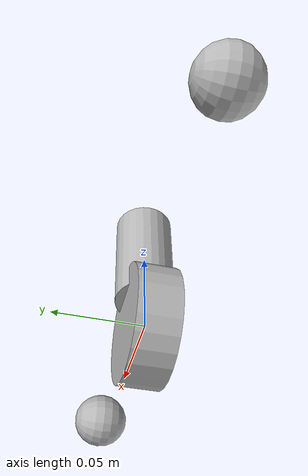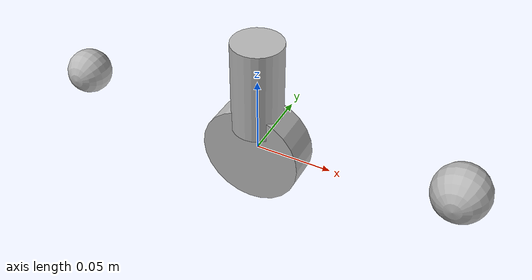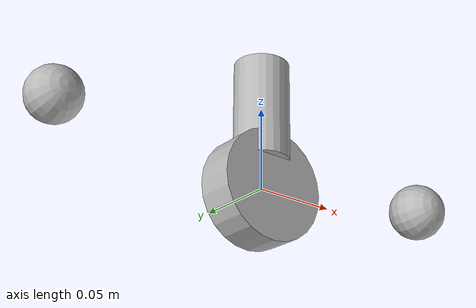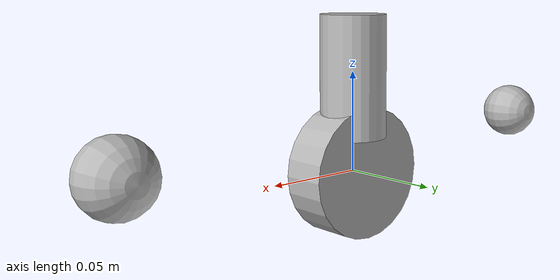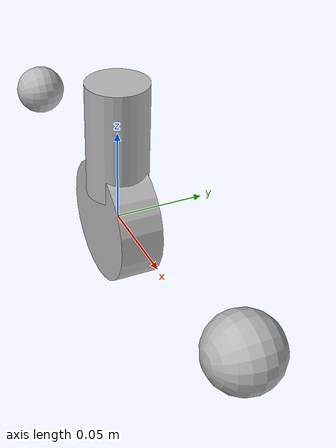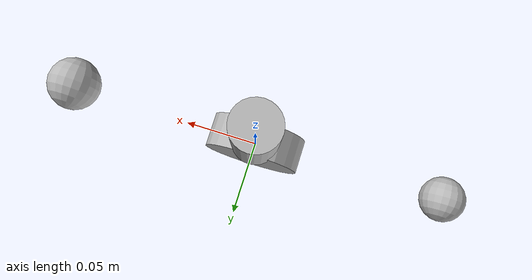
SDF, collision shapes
<sdf version='1.4'>
  <model name='create'>
    <link name='base'>
      <pose>0 0 0 0 -0 0</pose>
      <inertial>
        <pose>0.001453 -0.000453 0.029787 0 -0 0</pose>
        <mass>2.234</mass>
        <inertia>
          <ixx>0.05864</ixx>
          <ixy>0.000124</ixy>
          <ixz>0.000615</ixz>
          <iyy>0.058786</iyy>
          <iyz>1.4e-05</iyz>
          <izz>1.53244</izz>
        </inertia>
      </inertial>
      <collision name='base_collision'>
        <pose>0 0 0.0478 0 -0 0</pose>
        <geometry>
          <cylinder>
            <length>0.061163</length>
            <radius>0.016495</radius>
          </cylinder>
        </geometry>
      </collision>
      <collision name='base_collision_base_1'>
        <pose>0.13 0 0.017 0 1.5707 1.5707</pose>
        <geometry>
          <sphere>
            <radius>0.018</radius>
          </sphere>
        </geometry>
      </collision>
      <collision name='base_collision_base_2'>
        <pose>-0.13 0 0.017 0 1.5707 1.5707</pose>
        <geometry>
          <sphere>
            <radius>0.015</radius>
          </sphere>
        </geometry>
      </collision>
      <visual name='base_visual'>
        <pose>0 0 0.0478 0 -0 0</pose>
        <geometry>
          <mesh>
            <scale>1 1 1</scale>
            <uri>model://create_description/meshes/create_body.dae</uri>
          </mesh>
        </geometry>
      </visual>
      <visual name='base_visual_base_1'>
        <pose>0.13 0 0.017 0 1.5707 1.5707</pose>
        <geometry>
          <sphere>
            <radius>0.009</radius>
          </sphere>
        </geometry>
      </visual>
      <visual name='base_visual_base_2'>
        <pose>-0.13 0 0.017 0 1.5707 1.5707</pose>
        <geometry>
          <sphere>
            <radius>0.0075</radius>
          </sphere>
        </geometry>
      </visual>
      <velocity_decay>
        <linear>0</linear>
        <angular>0</angular>
      </velocity_decay>
    </link>
    <link name='left_wheel'>
      <pose>0 0 0 0 -0 0</pose>
      <inertial>
        <pose>0 0 0 0 -0 0</pose>
        <mass>0.01</mass>
        <inertia>
          <ixx>0.001</ixx>
          <ixy>0</ixy>
          <ixz>0</ixz>
          <iyy>0.001</iyy>
          <iyz>0</iyz>
          <izz>0.001</izz>
        </inertia>
      </inertial>
      <collision name='left_wheel_collision'>
        <pose>0 0 0 0 1.5707 1.5707</pose>
        <geometry>
          <cylinder>
            <length>0.023</length>
            <radius>0.033</radius>
          </cylinder>
        </geometry>
      </collision>
      <visual name='left_wheel_visual'>
        <pose>0 0 0 0 1.5707 1.5707</pose>
        <geometry>
          <cylinder>
            <length>0.023</length>
            <radius>0.033</radius>
          </cylinder>
        </geometry>
      </visual>
      <velocity_decay>
        <linear>0</linear>
        <angular>0</angular>
      </velocity_decay>
    </link>
    <joint name='left_wheel' type='revolute'>
      <child>left_wheel</child>
      <parent>base</parent>
      <axis>
        <xyz>0 1 0</xyz>
        <limit>
          <lower>-1e+16</lower>
          <upper>1e+16</upper>
        </limit>
        <dynamics/>
      </axis>
    </joint>
    <link name='right_wheel'>
      <pose>0 0 0 0 -0 0</pose>
      <inertial>
        <pose>0 0 0 0 -0 0</pose>
        <mass>0.01</mass>
        <inertia>
          <ixx>0.001</ixx>
          <ixy>0</ixy>
          <ixz>0</ixz>
          <iyy>0.001</iyy>
          <iyz>0</iyz>
          <izz>0.001</izz>
        </inertia>
      </inertial>
      <collision name='right_wheel_collision'>
        <pose>0 0 0 0 1.5707 1.5707</pose>
        <geometry>
          <cylinder>
            <length>0.023</length>
            <radius>0.033</radius>
          </cylinder>
        </geometry>
      </collision>
      <visual name='right_wheel_visual'>
        <pose>0 0 0 0 1.5707 1.5707</pose>
        <geometry>
          <cylinder>
            <length>0.023</length>
            <radius>0.033</radius>
          </cylinder>
        </geometry>
      </visual>
      <velocity_decay>
        <linear>0</linear>
        <angular>0</angular>
      </velocity_decay>
    </link>
    <joint name='right_wheel' type='revolute'>
      <child>right_wheel</child>
      <parent>base</parent>
      <axis>
        <xyz>0 1 0</xyz>
        <limit>
          <lower>-1e+16</lower>
          <upper>1e+16</upper>
        </limit>
        <dynamics/>
      </axis>
    </joint>
  </model>
</sdf>
